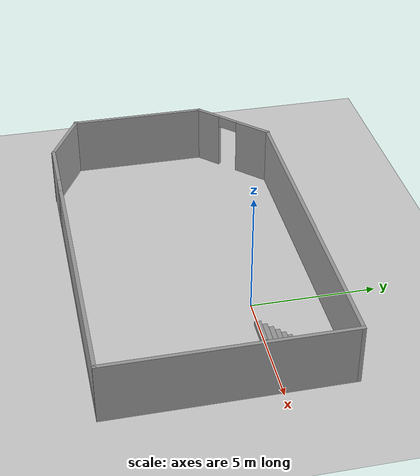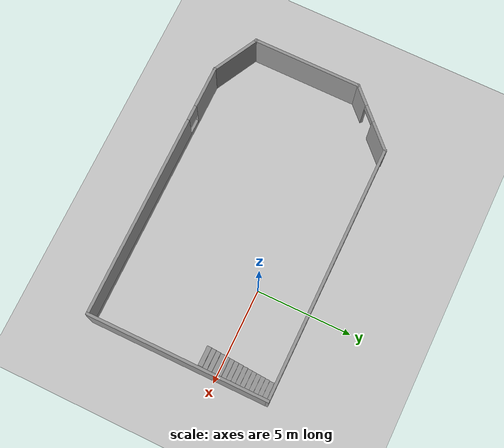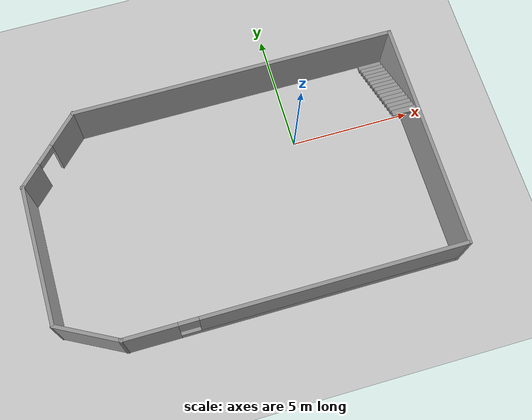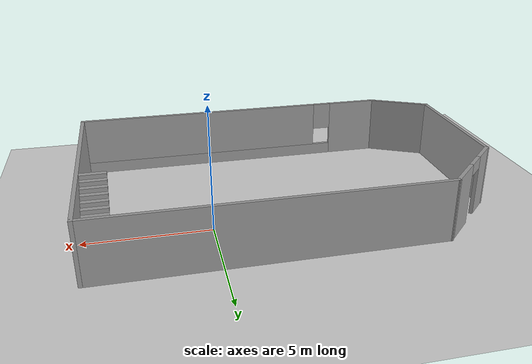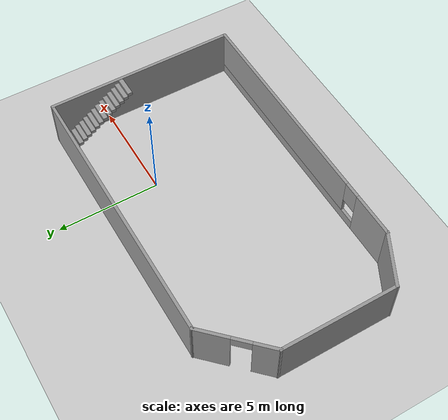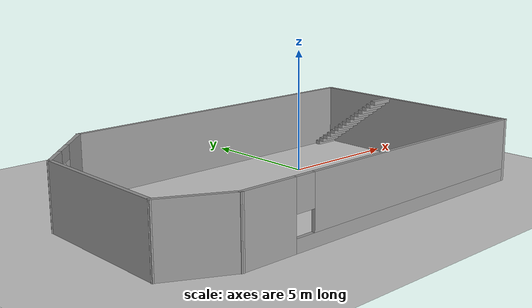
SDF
<sdf version="1.7">
 <world name="default">
  <light name="sun" type="directional">
   <pose>0 0 10 0 -0 0</pose>
   <diffuse>0.8 0.8 0.8 1</diffuse>
   <specular>0.2 0.2 0.2 1</specular>
   <attenuation>
    <range>1000</range>
    <constant>0.9</constant>
    <linear>0.01</linear>
    <quadratic>0.001</quadratic>
   </attenuation>
   <direction>-0.5 0.1 -0.9</direction>
   <spot><inner_angle>0</inner_angle><outer_angle>0</outer_angle><falloff>0</falloff></spot>
  </light>
  <model name="ground_plane">
   <static>1</static>
   <link name="link">
    <collision name="collision">
     <geometry><plane><normal>0 0 1</normal><size>100 100</size></plane></geometry>
     <surface>
      <contact><collide_bitmask>65535</collide_bitmask></contact>
      <friction><ode><mu>100</mu><mu2>50</mu2></ode></friction>
     </surface>
    </collision>
    <visual name="visual">
     <cast_shadows>0</cast_shadows>
     <geometry><plane><normal>0 0 1</normal><size>100 100</size></plane></geometry>
     <material>
      <script><uri>file://media/materials/scripts/gazebo.material</uri><name>Gazebo/Grey</name></script>
     </material>
    </visual>
   </link>
  </model>
  <gravity>0 0 -9.8</gravity>
  <magnetic_field>6e-06 2.3e-05 -4.2e-05</magnetic_field>
  <atmosphere type="adiabatic"/>
  <physics type="ode">
   <max_step_size>0.001</max_step_size>
   <real_time_factor>1</real_time_factor>
   <real_time_update_rate>1000</real_time_update_rate>
  </physics>
  <scene><ambient>0.4 0.4 0.4 1</ambient><background>0.7 0.7 0.7 1</background><shadows>1</shadows></scene>
  <audio><device>default</device></audio>
  <spherical_coordinates>
   <surface_model>EARTH_WGS84</surface_model>
   <latitude_deg>0</latitude_deg>
   <longitude_deg>0</longitude_deg>
   <elevation>0</elevation>
   <heading_deg>0</heading_deg>
  </spherical_coordinates>
  <model name="my_world">
   <pose>-3.1458 -1.90007 0 0 -0 0</pose>
   <link name="Stairs_1">
    <visual name="Stairs_1_Visual_0">
     <pose>7.37474 4.42898 0.083333 0 -0 0</pose>
     <geometry><box><size>1 0.233333 0.166667</size></box></geometry>
     <material>
      <script><uri>file://media/materials/scripts/gazebo.material</uri><name>Gazebo/Grey</name></script>
      <ambient>1 1 1 1</ambient>
     </material>
     <meta><layer>0</layer></meta>
    </visual>
    <collision name="Stairs_1_Collision_0">
     <geometry><box><size>1 0.233333 0.166667</size></box></geometry>
     <pose>7.37474 4.42898 0.083333 0 -0 0</pose>
    </collision>
    <visual name="Stairs_1_Visual_1">
     <pose>7.37474 4.19565 0.25 0 -0 0</pose>
     <geometry><box><size>1 0.233333 0.166667</size></box></geometry>
     <material>
      <script><uri>file://media/materials/scripts/gazebo.material</uri><name>Gazebo/Grey</name></script>
      <ambient>1 1 1 1</ambient>
     </material>
     <meta><layer>0</layer></meta>
    </visual>
    <collision name="Stairs_1_Collision_1">
     <geometry><box><size>1 0.233333 0.166667</size></box></geometry>
     <pose>7.37474 4.19565 0.25 0 -0 0</pose>
    </collision>
    <visual name="Stairs_1_Visual_2">
     <pose>7.37474 3.96231 0.416667 0 -0 0</pose>
     <geometry><box><size>1 0.233333 0.166667</size></box></geometry>
     <material>
      <script><uri>file://media/materials/scripts/gazebo.material</uri><name>Gazebo/Grey</name></script>
      <ambient>1 1 1 1</ambient>
     </material>
     <meta><layer>0</layer></meta>
    </visual>
    <collision name="Stairs_1_Collision_2">
     <geometry><box><size>1 0.233333 0.166667</size></box></geometry>
     <pose>7.37474 3.96231 0.416667 0 -0 0</pose>
    </collision>
    <visual name="Stairs_1_Visual_3">
     <pose>7.37474 3.72898 0.583333 0 -0 0</pose>
     <geometry><box><size>1 0.233333 0.166667</size></box></geometry>
     <material>
      <script><uri>file://media/materials/scripts/gazebo.material</uri><name>Gazebo/Grey</name></script>
      <ambient>1 1 1 1</ambient>
     </material>
     <meta><layer>0</layer></meta>
    </visual>
    <collision name="Stairs_1_Collision_3">
     <geometry><box><size>1 0.233333 0.166667</size></box></geometry>
     <pose>7.37474 3.72898 0.583333 0 -0 0</pose>
    </collision>
    <visual name="Stairs_1_Visual_4">
     <pose>7.37474 3.49565 0.75 0 -0 0</pose>
     <geometry><box><size>1 0.233333 0.166667</size></box></geometry>
     <material>
      <script><uri>file://media/materials/scripts/gazebo.material</uri><name>Gazebo/Grey</name></script>
      <ambient>1 1 1 1</ambient>
     </material>
     <meta><layer>0</layer></meta>
    </visual>
    <collision name="Stairs_1_Collision_4">
     <geometry><box><size>1 0.233333 0.166667</size></box></geometry>
     <pose>7.37474 3.49565 0.75 0 -0 0</pose>
    </collision>
    <visual name="Stairs_1_Visual_5">
     <pose>7.37474 3.26232 0.916667 0 -0 0</pose>
     <geometry><box><size>1 0.233333 0.166667</size></box></geometry>
     <material>
      <script><uri>file://media/materials/scripts/gazebo.material</uri><name>Gazebo/Grey</name></script>
      <ambient>1 1 1 1</ambient>
     </material>
     <meta><layer>0</layer></meta>
    </visual>
    <collision name="Stairs_1_Collision_5">
     <geometry><box><size>1 0.233333 0.166667</size></box></geometry>
     <pose>7.37474 3.26232 0.916667 0 -0 0</pose>
    </collision>
    <visual name="Stairs_1_Visual_6">
     <pose>7.37474 3.02898 1.08333 0 -0 0</pose>
     <geometry><box><size>1 0.233333 0.166667</size></box></geometry>
     <material>
      <script><uri>file://media/materials/scripts/gazebo.material</uri><name>Gazebo/Grey</name></script>
      <ambient>1 1 1 1</ambient>
     </material>
     <meta><layer>0</layer></meta>
    </visual>
    <collision name="Stairs_1_Collision_6">
     <geometry><box><size>1 0.233333 0.166667</size></box></geometry>
     <pose>7.37474 3.02898 1.08333 0 -0 0</pose>
    </collision>
    <visual name="Stairs_1_Visual_7">
     <pose>7.37474 2.79565 1.25 0 -0 0</pose>
     <geometry><box><size>1 0.233333 0.166667</size></box></geometry>
     <material>
      <script><uri>file://media/materials/scripts/gazebo.material</uri><name>Gazebo/Grey</name></script>
      <ambient>1 1 1 1</ambient>
     </material>
     <meta><layer>0</layer></meta>
    </visual>
    <collision name="Stairs_1_Collision_7">
     <geometry><box><size>1 0.233333 0.166667</size></box></geometry>
     <pose>7.37474 2.79565 1.25 0 -0 0</pose>
    </collision>
    <visual name="Stairs_1_Visual_8">
     <pose>7.37474 2.56231 1.41667 0 -0 0</pose>
     <geometry><box><size>1 0.233333 0.166667</size></box></geometry>
     <material>
      <script><uri>file://media/materials/scripts/gazebo.material</uri><name>Gazebo/Grey</name></script>
      <ambient>1 1 1 1</ambient>
     </material>
     <meta><layer>0</layer></meta>
    </visual>
    <collision name="Stairs_1_Collision_8">
     <geometry><box><size>1 0.233333 0.166667</size></box></geometry>
     <pose>7.37474 2.56231 1.41667 0 -0 0</pose>
    </collision>
    <visual name="Stairs_1_Visual_9">
     <pose>7.37474 2.32898 1.58333 0 -0 0</pose>
     <geometry><box><size>1 0.233333 0.166667</size></box></geometry>
     <material>
      <script><uri>file://media/materials/scripts/gazebo.material</uri><name>Gazebo/Grey</name></script>
      <ambient>1 1 1 1</ambient>
     </material>
     <meta><layer>0</layer></meta>
    </visual>
    <collision name="Stairs_1_Collision_9">
     <geometry><box><size>1 0.233333 0.166667</size></box></geometry>
     <pose>7.37474 2.32898 1.58333 0 -0 0</pose>
    </collision>
    <visual name="Stairs_1_Visual_10">
     <pose>7.37474 2.09565 1.75 0 -0 0</pose>
     <geometry><box><size>1 0.233333 0.166667</size></box></geometry>
     <material>
      <script><uri>file://media/materials/scripts/gazebo.material</uri><name>Gazebo/Grey</name></script>
      <ambient>1 1 1 1</ambient>
     </material>
     <meta><layer>0</layer></meta>
    </visual>
    <collision name="Stairs_1_Collision_10">
     <geometry><box><size>1 0.233333 0.166667</size></box></geometry>
     <pose>7.37474 2.09565 1.75 0 -0 0</pose>
    </collision>
    <visual name="Stairs_1_Visual_11">
     <pose>7.37474 1.86231 1.91667 0 -0 0</pose>
     <geometry><box><size>1 0.233333 0.166667</size></box></geometry>
     <material>
      <script><uri>file://media/materials/scripts/gazebo.material</uri><name>Gazebo/Grey</name></script>
      <ambient>1 1 1 1</ambient>
     </material>
     <meta><layer>0</layer></meta>
    </visual>
    <collision name="Stairs_1_Collision_11">
     <geometry><box><size>1 0.233333 0.166667</size></box></geometry>
     <pose>7.37474 1.86231 1.91667 0 -0 0</pose>
    </collision>
    <visual name="Stairs_1_Visual_12">
     <pose>7.37474 1.62898 2.08333 0 -0 0</pose>
     <geometry><box><size>1 0.233333 0.166667</size></box></geometry>
     <material>
      <script><uri>file://media/materials/scripts/gazebo.material</uri><name>Gazebo/Grey</name></script>
      <ambient>1 1 1 1</ambient>
     </material>
     <meta><layer>0</layer></meta>
    </visual>
    <collision name="Stairs_1_Collision_12">
     <geometry><box><size>1 0.233333 0.166667</size></box></geometry>
     <pose>7.37474 1.62898 2.08333 0 -0 0</pose>
    </collision>
    <visual name="Stairs_1_Visual_13">
     <pose>7.37474 1.39565 2.25 0 -0 0</pose>
     <geometry><box><size>1 0.233333 0.166667</size></box></geometry>
     <material>
      <script><uri>file://media/materials/scripts/gazebo.material</uri><name>Gazebo/Grey</name></script>
      <ambient>1 1 1 1</ambient>
     </material>
     <meta><layer>0</layer></meta>
    </visual>
    <collision name="Stairs_1_Collision_13">
     <geometry><box><size>1 0.233333 0.166667</size></box></geometry>
     <pose>7.37474 1.39565 2.25 0 -0 0</pose>
    </collision>
    <visual name="Stairs_1_Visual_14">
     <pose>7.37474 1.16231 2.41667 0 -0 0</pose>
     <geometry><box><size>1 0.233333 0.166667</size></box></geometry>
     <material>
      <script><uri>file://media/materials/scripts/gazebo.material</uri><name>Gazebo/Grey</name></script>
      <ambient>1 1 1 1</ambient>
     </material>
     <meta><layer>0</layer></meta>
    </visual>
    <collision name="Stairs_1_Collision_14">
     <geometry><box><size>1 0.233333 0.166667</size></box></geometry>
     <pose>7.37474 1.16231 2.41667 0 -0 0</pose>
    </collision>
   </link>
   <link name="Wall_0">
    <pose>1.16332 -4.6774 0 0 -0 0</pose>
    <visual name="Wall_0_Visual_0">
     <pose>-5.75873 0 1.25 0 -0 0</pose>
     <geometry><box><size>2.23254 0.15 2.5</size></box></geometry>
     <material>
      <script><uri>file://media/materials/scripts/gazebo.material</uri><name>Gazebo/Grey</name></script>
      <ambient>1 1 1 1</ambient>
     </material>
     <meta><layer>0</layer></meta>
    </visual>
    <collision name="Wall_0_Collision_0">
     <geometry><box><size>2.23254 0.15 2.5</size></box></geometry>
     <pose>-5.75873 0 1.25 0 -0 0</pose>
    </collision>
    <visual name="Wall_0_Visual_1">
     <pose>1.11627 0 0.25 0 -0 0</pose>
     <geometry><box><size>11.5175 0.15 0.5</size></box></geometry>
     <material>
      <script><uri>file://media/materials/scripts/gazebo.material</uri><name>Gazebo/Grey</name></script>
      <ambient>1 1 1 1</ambient>
     </material>
     <meta><layer>0</layer></meta>
    </visual>
    <collision name="Wall_0_Collision_1">
     <geometry><box><size>11.5175 0.15 0.5</size></box></geometry>
     <pose>1.11627 0 0.25 0 -0 0</pose>
    </collision>
    <visual name="Wall_0_Visual_2">
     <pose>1.51627 0 1.5 0 -0 0</pose>
     <geometry><box><size>10.7175 0.15 2</size></box></geometry>
     <material>
      <script><uri>file://media/materials/scripts/gazebo.material</uri><name>Gazebo/Grey</name></script>
      <ambient>1 1 1 1</ambient>
     </material>
     <meta><layer>0</layer></meta>
    </visual>
    <collision name="Wall_0_Collision_2">
     <geometry><box><size>10.7175 0.15 2</size></box></geometry>
     <pose>1.51627 0 1.5 0 -0 0</pose>
    </collision>
    <visual name="Wall_0_Visual_3">
     <pose>-4.24246 0 1.9 0 -0 0</pose>
     <geometry><box><size>0.8 0.15 1.2</size></box></geometry>
     <material>
      <script><uri>file://media/materials/scripts/gazebo.material</uri><name>Gazebo/Grey</name></script>
      <ambient>1 1 1 1</ambient>
     </material>
     <meta><layer>0</layer></meta>
    </visual>
    <collision name="Wall_0_Collision_3">
     <geometry><box><size>0.8 0.15 1.2</size></box></geometry>
     <pose>-4.24246 0 1.9 0 -0 0</pose>
    </collision>
   </link>
   <link name="Wall_1">
    <collision name="Wall_1_Collision">
     <geometry><box><size>9.5 0.15 2.5</size></box></geometry>
     <pose>0 0 1.25 0 -0 0</pose>
    </collision>
    <visual name="Wall_1_Visual">
     <pose>0 0 1.25 0 -0 0</pose>
     <geometry><box><size>9.5 0.15 2.5</size></box></geometry>
     <material>
      <script><uri>file://media/materials/scripts/gazebo.material</uri><name>Gazebo/Grey</name></script>
      <ambient>1 1 1 1</ambient>
     </material>
     <meta><layer>0</layer></meta>
    </visual>
    <pose>7.96333 -0.002404 0 0 -0 1.5708</pose>
   </link>
   <link name="Wall_2">
    <collision name="Wall_2_Collision">
     <geometry><box><size>13.5 0.15 2.5</size></box></geometry>
     <pose>0 0 1.25 0 -0 0</pose>
    </collision>
    <visual name="Wall_2_Visual">
     <pose>0 0 1.25 0 -0 0</pose>
     <geometry><box><size>13.5 0.15 2.5</size></box></geometry>
     <material>
      <script><uri>file://media/materials/scripts/gazebo.material</uri><name>Gazebo/Grey</name></script>
      <ambient>1 1 1 1</ambient>
     </material>
     <meta><layer>0</layer></meta>
    </visual>
    <pose>1.28832 4.6726 0 0 -0 3.14159</pose>
   </link>
   <link name="Wall_3">
    <pose>-6.65947 3.3998 0 0 -0 -2.35619</pose>
    <visual name="Wall_3_Visual_0">
     <pose>-1.04857 0 1.25 0 -0 0</pose>
     <geometry><box><size>1.65286 0.15 2.5</size></box></geometry>
     <material>
      <script><uri>file://media/materials/scripts/gazebo.material</uri><name>Gazebo/Grey</name></script>
      <ambient>1 1 1 1</ambient>
     </material>
     <meta><layer>0</layer></meta>
    </visual>
    <collision name="Wall_3_Collision_0">
     <geometry><box><size>1.65286 0.15 2.5</size></box></geometry>
     <pose>-1.04857 0 1.25 0 -0 0</pose>
    </collision>
    <visual name="Wall_3_Visual_1">
     <pose>1.27643 0 1.25 0 -0 0</pose>
     <geometry><box><size>1.19714 0.15 2.5</size></box></geometry>
     <material>
      <script><uri>file://media/materials/scripts/gazebo.material</uri><name>Gazebo/Grey</name></script>
      <ambient>1 1 1 1</ambient>
     </material>
     <meta><layer>0</layer></meta>
    </visual>
    <collision name="Wall_3_Collision_1">
     <geometry><box><size>1.19714 0.15 2.5</size></box></geometry>
     <pose>1.27643 0 1.25 0 -0 0</pose>
    </collision>
    <visual name="Wall_3_Visual_2">
     <pose>0.227863 0 2.25 0 -0 0</pose>
     <geometry><box><size>0.9 0.15 0.5</size></box></geometry>
     <material>
      <script><uri>file://media/materials/scripts/gazebo.material</uri><name>Gazebo/Grey</name></script>
      <ambient>1 1 1 1</ambient>
     </material>
     <meta><layer>0</layer></meta>
    </visual>
    <collision name="Wall_3_Collision_2">
     <geometry><box><size>0.9 0.15 0.5</size></box></geometry>
     <pose>0.227863 0 2.25 0 -0 0</pose>
    </collision>
   </link>
   <link name="Wall_4">
    <collision name="Wall_4_Collision">
     <geometry><box><size>5.75 0.15 2.5</size></box></geometry>
     <pose>0 0 1.25 0 -0 0</pose>
    </collision>
    <visual name="Wall_4_Visual">
     <pose>0 0 1.25 0 -0 0</pose>
     <geometry><box><size>5.75 0.15 2.5</size></box></geometry>
     <material>
      <script><uri>file://media/materials/scripts/gazebo.material</uri><name>Gazebo/Grey</name></script>
      <ambient>1 1 1 1</ambient>
     </material>
     <meta><layer>0</layer></meta>
    </visual>
    <pose>-7.93226 -0.672988 0 0 -0 -1.5708</pose>
   </link>
   <link name="Wall_5">
    <collision name="Wall_5_Collision">
     <geometry><box><size>2.74236 0.15 2.5</size></box></geometry>
     <pose>0 0 1.25 0 -0 0</pose>
    </collision>
    <visual name="Wall_5_Visual">
     <pose>0 0 1.25 0 -0 0</pose>
     <geometry><box><size>2.74236 0.15 2.5</size></box></geometry>
     <material>
      <script><uri>file://media/materials/scripts/gazebo.material</uri><name>Gazebo/Grey</name></script>
      <ambient>1 1 1 1</ambient>
     </material>
     <meta><layer>0</layer></meta>
    </visual>
    <pose>-6.78447 -4.0752 0 0 -0 -0.483185</pose>
   </link>
   <static>1</static>
  </model>
 </world>
</sdf>
